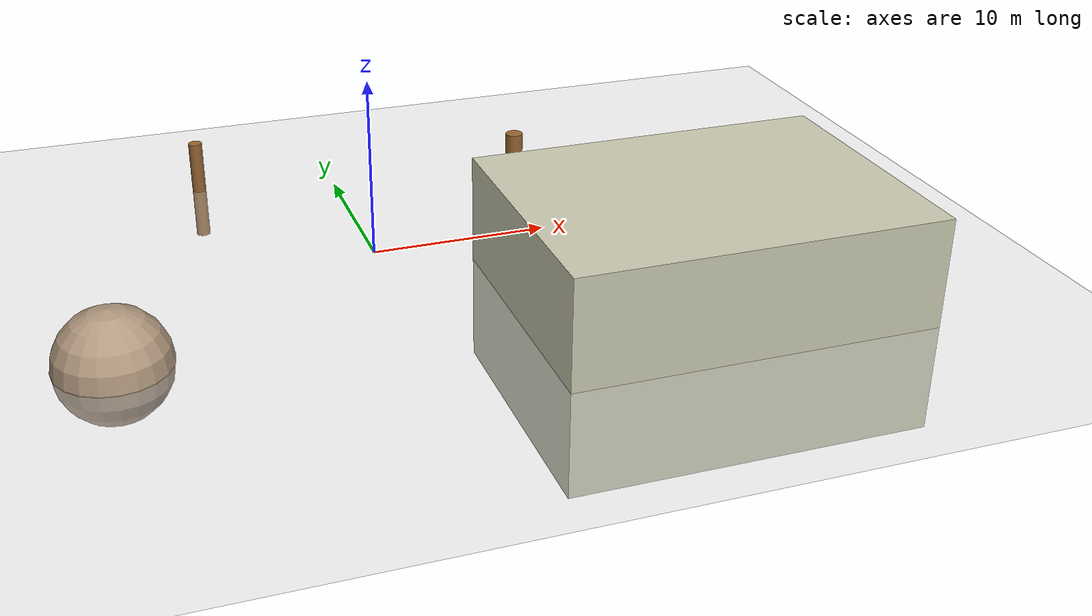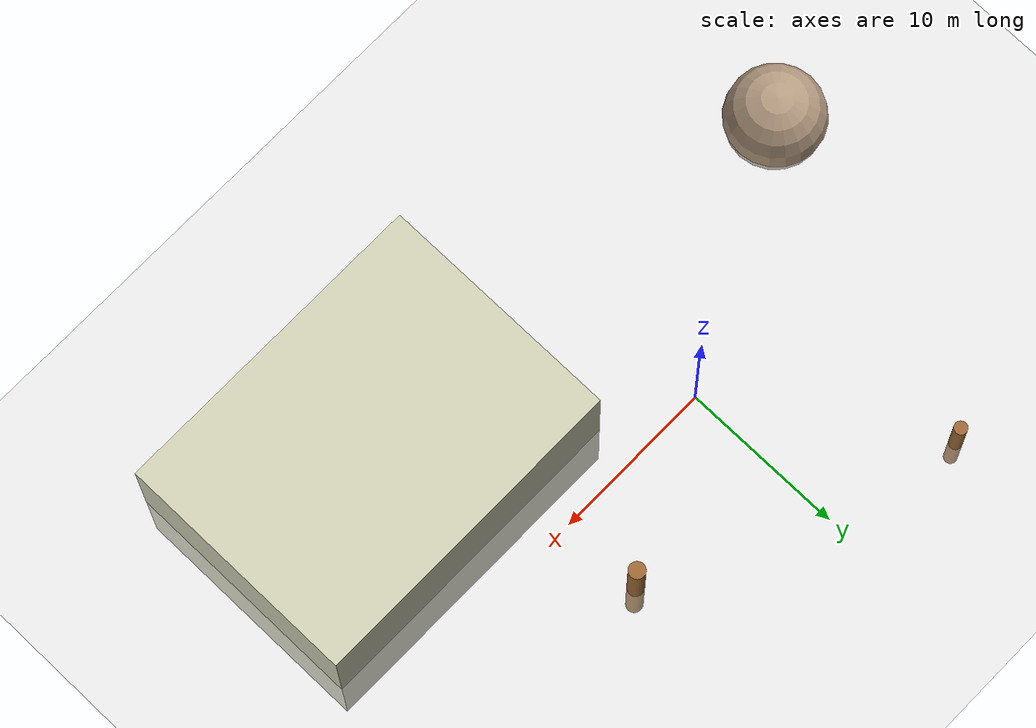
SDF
<sdf version="1.6">
 <world name="dodoma_tanzania">
  <physics name="1ms" type="ode">
   <max_step_size>0.001</max_step_size>
   <real_time_factor>1.0</real_time_factor>
   <real_time_update_rate>1000</real_time_update_rate>
   <gravity>0 0 -9.8066</gravity>
  </physics>
  <include><uri>model://ground_plane</uri></include>
  <include><uri>model://sun</uri><pose>0 0 50 0 0 0</pose></include>
  <scene>
   <sky>
    <time>10.0</time>
    <sunrise>6.0</sunrise>
    <sunset>18.5</sunset>
    <clouds>
     <speed>12</speed>
     <direction>1 0 0</direction>
     <humidity>0.3</humidity>
     <mean_size>0.5</mean_size>
     <ambient>0.4 0.4 0.4 1</ambient>
    </clouds>
   </sky>
  </scene>
  <model name="acacia_tree_1">
   <pose>10 5 0 0 0 0</pose>
   <link name="link">
    <collision name="collision">
     <geometry><cylinder><radius>0.5</radius><length>8</length></cylinder></geometry>
    </collision>
    <visual name="visual">
     <geometry><cylinder><radius>0.5</radius><length>8</length></cylinder></geometry>
     <material><ambient>0.5 0.3 0.1 1</ambient><diffuse>0.6 0.4 0.2 1</diffuse></material>
    </visual>
   </link>
  </model>
  <model name="acacia_tree_2">
   <pose>-8 12 0 0 0 0</pose>
   <link name="link">
    <collision name="collision">
     <geometry><cylinder><radius>0.4</radius><length>6</length></cylinder></geometry>
    </collision>
    <visual name="visual">
     <geometry><cylinder><radius>0.4</radius><length>6</length></cylinder></geometry>
     <material><ambient>0.5 0.3 0.1 1</ambient><diffuse>0.6 0.4 0.2 1</diffuse></material>
    </visual>
   </link>
  </model>
  <model name="gov_building_1">
   <pose>15 -10 0 0 0 0</pose>
   <link name="link">
    <collision name="collision"><geometry><box><size>20 15 12</size></box></geometry></collision>
    <visual name="visual">
     <geometry><box><size>20 15 12</size></box></geometry>
     <material><ambient>0.7 0.7 0.6 1</ambient><diffuse>0.8 0.8 0.7 1</diffuse></material>
    </visual>
   </link>
  </model>
  <model name="rocky_hill_1">
   <pose>-15 -8 0 0 0 0</pose>
   <link name="link">
    <collision name="collision"><geometry><sphere><radius>3</radius></sphere></geometry></collision>
    <visual name="visual">
     <geometry><sphere><radius>3</radius></sphere></geometry>
     <material><ambient>0.6 0.5 0.4 1</ambient><diffuse>0.7 0.6 0.5 1</diffuse></material>
    </visual>
   </link>
  </model>
  <wind>
   <linear_velocity><x>2.5</x><y>1.0</y><z>0.0</z></linear_velocity>
   <gust><x>0.5</x><y>0.3</y><z>0.0</z></gust>
  </wind>
 </world>
</sdf>
